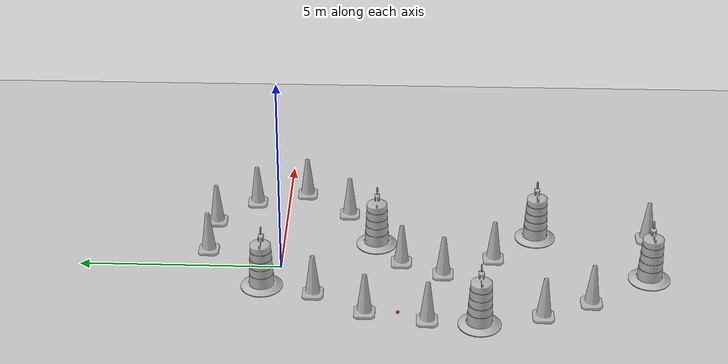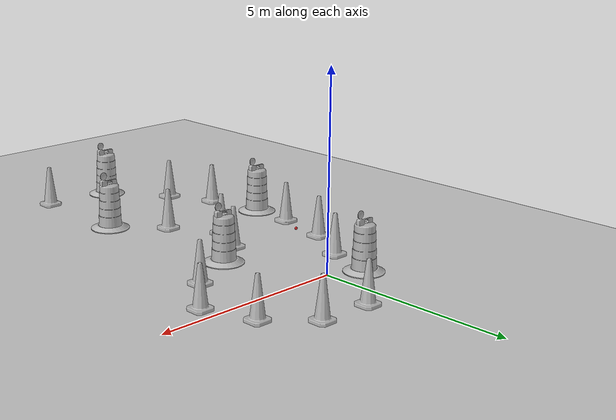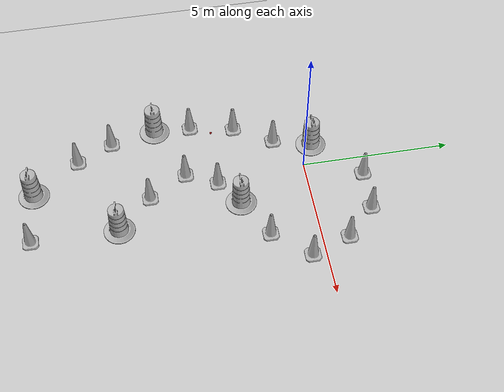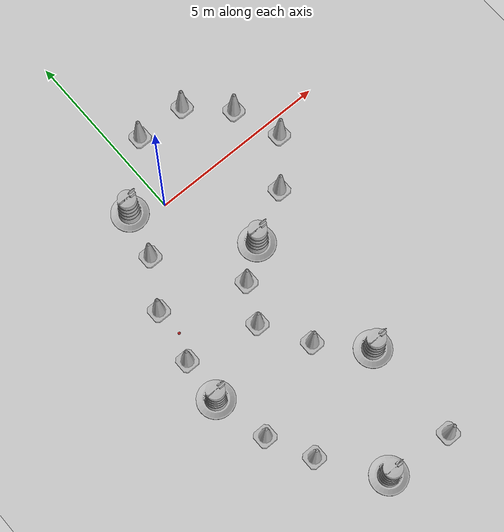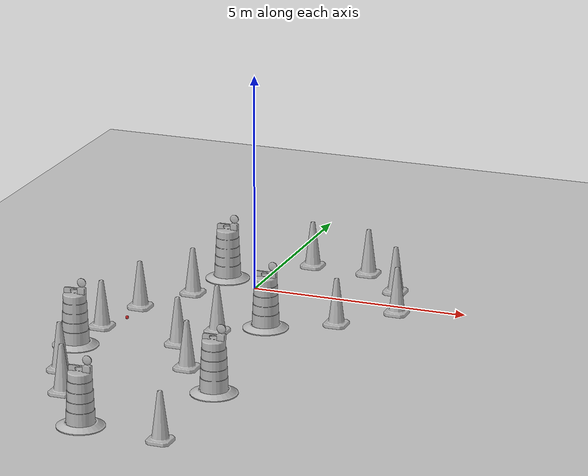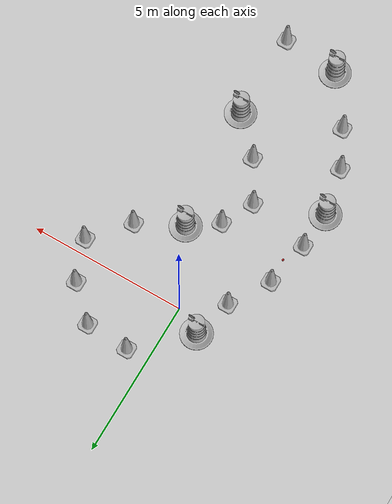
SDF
<sdf version="1.7">
 <world name="default">
  <light name="sun" type="directional">
   <pose>0 0 10 0 -0 0</pose>
   <diffuse>0.8 0.8 0.8 1</diffuse>
   <specular>0.2 0.2 0.2 1</specular>
   <attenuation>
    <range>1000</range>
    <constant>0.9</constant>
    <linear>0.01</linear>
    <quadratic>0.001</quadratic>
   </attenuation>
   <direction>-0.5 0.1 -0.9</direction>
   <spot><inner_angle>0</inner_angle><outer_angle>0</outer_angle><falloff>0</falloff></spot>
  </light>
  <model name="ground_plane">
   <static>1</static>
   <link name="link">
    <collision name="collision">
     <geometry><plane><normal>0 0 1</normal><size>100 100</size></plane></geometry>
     <surface>
      <contact><collide_bitmask>65535</collide_bitmask></contact>
      <friction><ode><mu>100</mu><mu2>50</mu2></ode></friction>
     </surface>
    </collision>
    <visual name="visual">
     <cast_shadows>0</cast_shadows>
     <geometry><plane><normal>0 0 1</normal><size>100 100</size></plane></geometry>
     <material>
      <script><uri>file://media/materials/scripts/gazebo.material</uri><name>Gazebo/Grey</name></script>
     </material>
    </visual>
   </link>
  </model>
  <gravity>0 0 -9.8</gravity>
  <magnetic_field>6e-06 2.3e-05 -4.2e-05</magnetic_field>
  <atmosphere type="adiabatic"/>
  <physics type="ode">
   <max_step_size>0.001</max_step_size>
   <real_time_factor>1</real_time_factor>
   <real_time_update_rate>1000</real_time_update_rate>
  </physics>
  <scene><ambient>0.4 0.4 0.4 1</ambient><background>0.7 0.7 0.7 1</background><shadows>1</shadows></scene>
  <spherical_coordinates>
   <surface_model>EARTH_WGS84</surface_model>
   <latitude_deg>0</latitude_deg>
   <longitude_deg>0</longitude_deg>
   <elevation>0</elevation>
   <heading_deg>0</heading_deg>
  </spherical_coordinates>
  <model name="Construction Cone">
   <link name="link">
    <collision name="collision">
     <geometry>
      <mesh><scale>10 10 10</scale><uri>model://construction_cone/meshes/construction_cone.dae</uri></mesh>
     </geometry>
    </collision>
    <visual name="visual">
     <geometry>
      <mesh><scale>10 10 10</scale><uri>model://construction_cone/meshes/construction_cone.dae</uri></mesh>
     </geometry>
    </visual>
    <inertial>
     <inertia><ixx>1</ixx><ixy>0</ixy><ixz>0</ixz><iyy>1</iyy><iyz>0</iyz><izz>1</izz></inertia>
     <mass>1</mass>
    </inertial>
   </link>
   <pose>-0.229547 -3.98729 -0 0 -0 0</pose>
  </model>
  <model name="Construction Cone_0">
   <link name="link">
    <collision name="collision">
     <geometry>
      <mesh><scale>10 10 10</scale><uri>model://construction_cone/meshes/construction_cone.dae</uri></mesh>
     </geometry>
    </collision>
    <visual name="visual">
     <geometry>
      <mesh><scale>10 10 10</scale><uri>model://construction_cone/meshes/construction_cone.dae</uri></mesh>
     </geometry>
    </visual>
    <inertial>
     <inertia><ixx>1</ixx><ixy>0</ixy><ixz>0</ixz><iyy>1</iyy><iyz>0</iyz><izz>1</izz></inertia>
     <mass>1</mass>
    </inertial>
   </link>
   <pose>0.276393 -2.96704 -0 0 -0 0</pose>
  </model>
  <model name="Construction Barrel">
   <link name="link">
    <inertial>
     <pose>0 0 0.4 0 -0 0</pose>
     <mass>500</mass>
     <inertia><ixx>51.2096</ixx><iyy>51.2096</iyy><izz>25</izz><ixy>0</ixy><ixz>0</ixz><iyz>0</iyz></inertia>
    </inertial>
    <collision name="collision">
     <geometry><mesh><uri>model://construction_barrel/meshes/construction_barrel.dae</uri></mesh></geometry>
    </collision>
    <visual name="visual">
     <geometry><mesh><uri>model://construction_barrel/meshes/construction_barrel.dae</uri></mesh></geometry>
    </visual>
   </link>
   <pose>-2.28552 -4.79726 -1e-06 1e-06 -9e-06 -2.8e-05</pose>
  </model>
  <model name="Construction Barrel_0">
   <link name="link">
    <inertial>
     <pose>0 0 0.4 0 -0 0</pose>
     <mass>500</mass>
     <inertia><ixx>51.2096</ixx><iyy>51.2096</iyy><izz>25</izz><ixy>0</ixy><ixz>0</ixz><iyz>0</iyz></inertia>
    </inertial>
    <collision name="collision">
     <geometry><mesh><uri>model://construction_barrel/meshes/construction_barrel.dae</uri></mesh></geometry>
    </collision>
    <visual name="visual">
     <geometry><mesh><uri>model://construction_barrel/meshes/construction_barrel.dae</uri></mesh></geometry>
    </visual>
   </link>
   <pose>1.1664 -2.33783 -1e-06 1e-06 -9e-06 -2.7e-05</pose>
  </model>
  <model name="Construction Cone_1">
   <link name="link">
    <collision name="collision">
     <geometry>
      <mesh><scale>10 10 10</scale><uri>model://construction_cone/meshes/construction_cone.dae</uri></mesh>
     </geometry>
    </collision>
    <visual name="visual">
     <geometry>
      <mesh><scale>10 10 10</scale><uri>model://construction_cone/meshes/construction_cone.dae</uri></mesh>
     </geometry>
    </visual>
    <inertial>
     <inertia><ixx>1</ixx><ixy>0</ixy><ixz>0</ixz><iyy>1</iyy><iyz>0</iyz><izz>1</izz></inertia>
     <mass>1</mass>
    </inertial>
   </link>
   <pose>-2.20601 -3.5774 0 -0 -0 -0</pose>
  </model>
  <model name="Construction Cone_2">
   <link name="link">
    <collision name="collision">
     <geometry>
      <mesh><scale>10 10 10</scale><uri>model://construction_cone/meshes/construction_cone.dae</uri></mesh>
     </geometry>
    </collision>
    <visual name="visual">
     <geometry>
      <mesh><scale>10 10 10</scale><uri>model://construction_cone/meshes/construction_cone.dae</uri></mesh>
     </geometry>
    </visual>
    <inertial>
     <inertia><ixx>1</ixx><ixy>0</ixy><ixz>0</ixz><iyy>1</iyy><iyz>0</iyz><izz>1</izz></inertia>
     <mass>1</mass>
    </inertial>
   </link>
   <pose>-1.17113 -0.849131 -0 0 -1e-06 0</pose>
  </model>
  <model name="cricket_ball">
   <link name="link">
    <pose>0 0 0.0375 0 -0 0</pose>
    <inertial>
     <mass>0.1467</mass>
     <inertia>
      <ixx>8.25187e-05</ixx>
      <ixy>0</ixy>
      <ixz>0</ixz>
      <iyy>8.25187e-05</iyy>
      <iyz>0</iyz>
      <izz>8.25187e-05</izz>
     </inertia>
    </inertial>
    <collision name="collision">
     <geometry><sphere><radius>0.0375</radius></sphere></geometry>
     <surface>
      <contact>
       <poissons_ratio>0.347</poissons_ratio>
       <elastic_modulus>8.8e+09</elastic_modulus>
       <ode><kp>100000</kp><kd>100</kd><max_vel>100</max_vel><min_depth>0.001</min_depth></ode>
      </contact>
      <friction>
       <torsional>
        <coefficient>1</coefficient>
        <use_patch_radius>0</use_patch_radius>
        <surface_radius>0.01</surface_radius>
       </torsional>
      </friction>
     </surface>
    </collision>
    <visual name="visual">
     <geometry><sphere><radius>0.0375</radius></sphere></geometry>
     <material>
      <script><uri>file://media/materials/scripts/gazebo.material</uri><name>Gazebo/Red</name></script>
     </material>
    </visual>
    <velocity_decay><linear>0</linear><angular>0.005</angular></velocity_decay>
   </link>
   <pose>-1.90154 -2.891 -0.001014 0 -0 0</pose>
  </model>
  <model name="Construction Cone_3">
   <link name="link">
    <collision name="collision">
     <geometry>
      <mesh><scale>10 10 10</scale><uri>model://construction_cone/meshes/construction_cone.dae</uri></mesh>
     </geometry>
    </collision>
    <visual name="visual">
     <geometry>
      <mesh><scale>10 10 10</scale><uri>model://construction_cone/meshes/construction_cone.dae</uri></mesh>
     </geometry>
    </visual>
    <inertial>
     <inertia><ixx>1</ixx><ixy>0</ixy><ixz>0</ixz><iyy>1</iyy><iyz>0</iyz><izz>1</izz></inertia>
     <mass>1</mass>
    </inertial>
   </link>
   <pose>-1.92377 -2.10548 -0 0 -1e-06 0</pose>
  </model>
  <model name="Construction Cone_4">
   <link name="link">
    <collision name="collision">
     <geometry>
      <mesh><scale>10 10 10</scale><uri>model://construction_cone/meshes/construction_cone.dae</uri></mesh>
     </geometry>
    </collision>
    <visual name="visual">
     <geometry>
      <mesh><scale>10 10 10</scale><uri>model://construction_cone/meshes/construction_cone.dae</uri></mesh>
     </geometry>
    </visual>
    <inertial>
     <inertia><ixx>1</ixx><ixy>0</ixy><ixz>0</ixz><iyy>1</iyy><iyz>0</iyz><izz>1</izz></inertia>
     <mass>1</mass>
    </inertial>
   </link>
   <pose>0.509957 -5.25493 -0 0 -1e-06 0</pose>
  </model>
  <model name="Construction Barrel_1">
   <link name="link">
    <inertial>
     <pose>0 0 0.4 0 -0 0</pose>
     <mass>500</mass>
     <inertia><ixx>51.2096</ixx><iyy>51.2096</iyy><izz>25</izz><ixy>0</ixy><ixz>0</ixz><iyz>0</iyz></inertia>
    </inertial>
    <collision name="collision">
     <geometry><mesh><uri>model://construction_barrel/meshes/construction_barrel.dae</uri></mesh></geometry>
    </collision>
    <visual name="visual">
     <geometry><mesh><uri>model://construction_barrel/meshes/construction_barrel.dae</uri></mesh></geometry>
    </visual>
   </link>
   <pose>1.58334 -6.36616 -1e-06 1e-06 -9e-06 -2e-05</pose>
  </model>
  <model name="Construction Barrel_2">
   <link name="link">
    <inertial>
     <pose>0 0 0.4 0 -0 0</pose>
     <mass>500</mass>
     <inertia><ixx>51.2096</ixx><iyy>51.2096</iyy><izz>25</izz><ixy>0</ixy><ixz>0</ixz><iyz>0</iyz></inertia>
    </inertial>
    <collision name="collision">
     <geometry><mesh><uri>model://construction_barrel/meshes/construction_barrel.dae</uri></mesh></geometry>
    </collision>
    <visual name="visual">
     <geometry><mesh><uri>model://construction_barrel/meshes/construction_barrel.dae</uri></mesh></geometry>
    </visual>
   </link>
   <pose>-0.255408 -9.01255 -3e-06 -7e-06 -1.2e-05 -2e-05</pose>
  </model>
  <model name="Construction Cone_5">
   <link name="link">
    <collision name="collision">
     <geometry>
      <mesh><scale>10 10 10</scale><uri>model://construction_cone/meshes/construction_cone.dae</uri></mesh>
     </geometry>
    </collision>
    <visual name="visual">
     <geometry>
      <mesh><scale>10 10 10</scale><uri>model://construction_cone/meshes/construction_cone.dae</uri></mesh>
     </geometry>
    </visual>
    <inertial>
     <inertia><ixx>1</ixx><ixy>0</ixy><ixz>0</ixz><iyy>1</iyy><iyz>0</iyz><izz>1</izz></inertia>
     <mass>1</mass>
    </inertial>
   </link>
   <pose>-1.95588 -6.30519 -0 0 -0 0</pose>
  </model>
  <model name="Construction Cone_6">
   <link name="link">
    <collision name="collision">
     <geometry>
      <mesh><scale>10 10 10</scale><uri>model://construction_cone/meshes/construction_cone.dae</uri></mesh>
     </geometry>
    </collision>
    <visual name="visual">
     <geometry>
      <mesh><scale>10 10 10</scale><uri>model://construction_cone/meshes/construction_cone.dae</uri></mesh>
     </geometry>
    </visual>
    <inertial>
     <inertia><ixx>1</ixx><ixy>0</ixy><ixz>0</ixz><iyy>1</iyy><iyz>0</iyz><izz>1</izz></inertia>
     <mass>1</mass>
    </inertial>
   </link>
   <pose>-1.36675 -7.48999 -0 0 -1e-06 0</pose>
  </model>
  <model name="Construction Cone_7">
   <link name="link">
    <collision name="collision">
     <geometry>
      <mesh><scale>10 10 10</scale><uri>model://construction_cone/meshes/construction_cone.dae</uri></mesh>
     </geometry>
    </collision>
    <visual name="visual">
     <geometry>
      <mesh><scale>10 10 10</scale><uri>model://construction_cone/meshes/construction_cone.dae</uri></mesh>
     </geometry>
    </visual>
    <inertial>
     <inertia><ixx>1</ixx><ixy>0</ixy><ixz>0</ixz><iyy>1</iyy><iyz>0</iyz><izz>1</izz></inertia>
     <mass>1</mass>
    </inertial>
   </link>
   <pose>2.55413 -1.61401 -0 -0 -0 -0</pose>
  </model>
  <model name="Construction Cone_8">
   <link name="link">
    <collision name="collision">
     <geometry>
      <mesh><scale>10 10 10</scale><uri>model://construction_cone/meshes/construction_cone.dae</uri></mesh>
     </geometry>
    </collision>
    <visual name="visual">
     <geometry>
      <mesh><scale>10 10 10</scale><uri>model://construction_cone/meshes/construction_cone.dae</uri></mesh>
     </geometry>
    </visual>
    <inertial>
     <inertia><ixx>1</ixx><ixy>0</ixy><ixz>0</ixz><iyy>1</iyy><iyz>0</iyz><izz>1</izz></inertia>
     <mass>1</mass>
    </inertial>
   </link>
   <pose>1.57147 -9.19153 -0 0 -0 0</pose>
  </model>
  <model name="Construction Barrel_3">
   <link name="link">
    <inertial>
     <pose>0 0 0.4 0 -0 0</pose>
     <mass>500</mass>
     <inertia><ixx>51.2096</ixx><iyy>51.2096</iyy><izz>25</izz><ixy>0</ixy><ixz>0</ixz><iyz>0</iyz></inertia>
    </inertial>
    <collision name="collision">
     <geometry><mesh><uri>model://construction_barrel/meshes/construction_barrel.dae</uri></mesh></geometry>
    </collision>
    <visual name="visual">
     <geometry><mesh><uri>model://construction_barrel/meshes/construction_barrel.dae</uri></mesh></geometry>
    </visual>
   </link>
   <pose>-0.831484 0.410406 -2e-06 0 7e-06 -1e-05</pose>
  </model>
  <model name="Construction Cone_9">
   <link name="link">
    <collision name="collision">
     <geometry>
      <mesh><scale>10 10 10</scale><uri>model://construction_cone/meshes/construction_cone.dae</uri></mesh>
     </geometry>
    </collision>
    <visual name="visual">
     <geometry>
      <mesh><scale>10 10 10</scale><uri>model://construction_cone/meshes/construction_cone.dae</uri></mesh>
     </geometry>
    </visual>
    <inertial>
     <inertia><ixx>1</ixx><ixy>0</ixy><ixz>0</ixz><iyy>1</iyy><iyz>0</iyz><izz>1</izz></inertia>
     <mass>1</mass>
    </inertial>
   </link>
   <pose>3.5577 -0.450978 -0 0 -0 0</pose>
  </model>
  <model name="Construction Cone_10">
   <link name="link">
    <collision name="collision">
     <geometry>
      <mesh><scale>10 10 10</scale><uri>model://construction_cone/meshes/construction_cone.dae</uri></mesh>
     </geometry>
    </collision>
    <visual name="visual">
     <geometry>
      <mesh><scale>10 10 10</scale><uri>model://construction_cone/meshes/construction_cone.dae</uri></mesh>
     </geometry>
    </visual>
    <inertial>
     <inertia><ixx>1</ixx><ixy>0</ixy><ixz>0</ixz><iyy>1</iyy><iyz>0</iyz><izz>1</izz></inertia>
     <mass>1</mass>
    </inertial>
   </link>
   <pose>3.08089 0.848059 0 -0 -0 -0</pose>
  </model>
  <model name="Construction Cone_11">
   <link name="link">
    <collision name="collision">
     <geometry>
      <mesh><scale>10 10 10</scale><uri>model://construction_cone/meshes/construction_cone.dae</uri></mesh>
     </geometry>
    </collision>
    <visual name="visual">
     <geometry>
      <mesh><scale>10 10 10</scale><uri>model://construction_cone/meshes/construction_cone.dae</uri></mesh>
     </geometry>
    </visual>
    <inertial>
     <inertia><ixx>1</ixx><ixy>0</ixy><ixz>0</ixz><iyy>1</iyy><iyz>0</iyz><izz>1</izz></inertia>
     <mass>1</mass>
    </inertial>
   </link>
   <pose>2.09384 1.80831 -9e-06 -1e-06 0 0</pose>
  </model>
  <model name="Construction Cone_12">
   <link name="link">
    <collision name="collision">
     <geometry>
      <mesh><scale>10 10 10</scale><uri>model://construction_cone/meshes/construction_cone.dae</uri></mesh>
     </geometry>
    </collision>
    <visual name="visual">
     <geometry>
      <mesh><scale>10 10 10</scale><uri>model://construction_cone/meshes/construction_cone.dae</uri></mesh>
     </geometry>
    </visual>
    <inertial>
     <inertia><ixx>1</ixx><ixy>0</ixy><ixz>0</ixz><iyy>1</iyy><iyz>0</iyz><izz>1</izz></inertia>
     <mass>1</mass>
    </inertial>
   </link>
   <pose>0.704875 1.87128 -0 0 -1e-06 0</pose>
  </model>
 </world>
</sdf>
